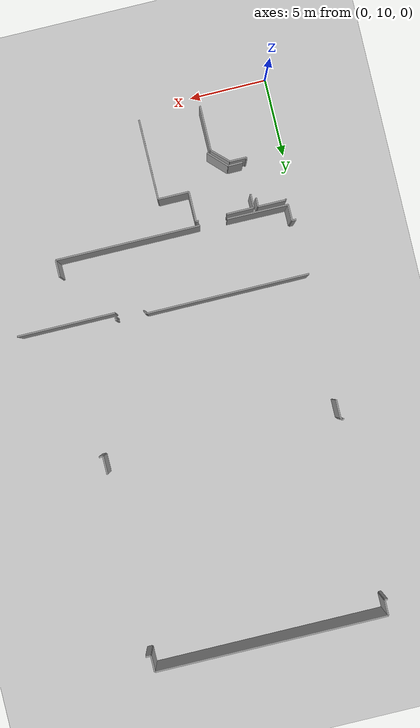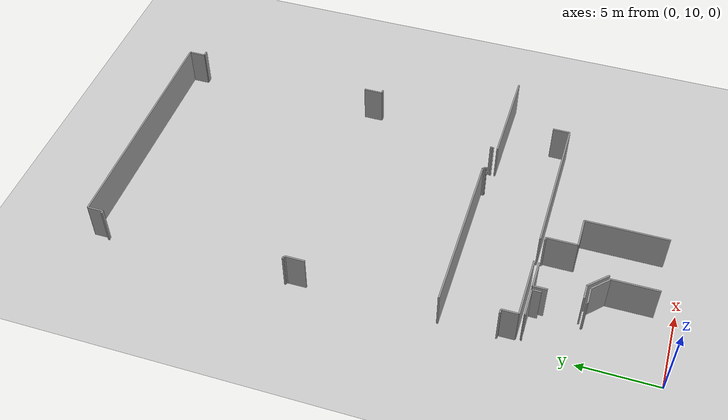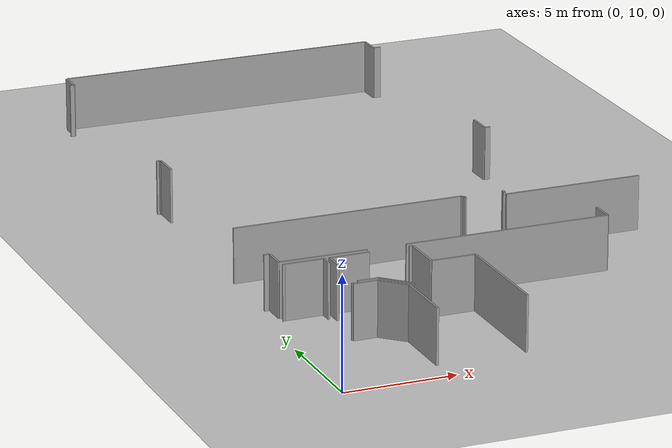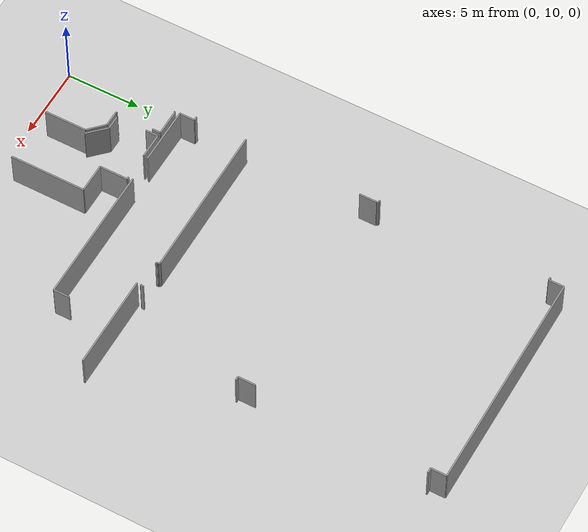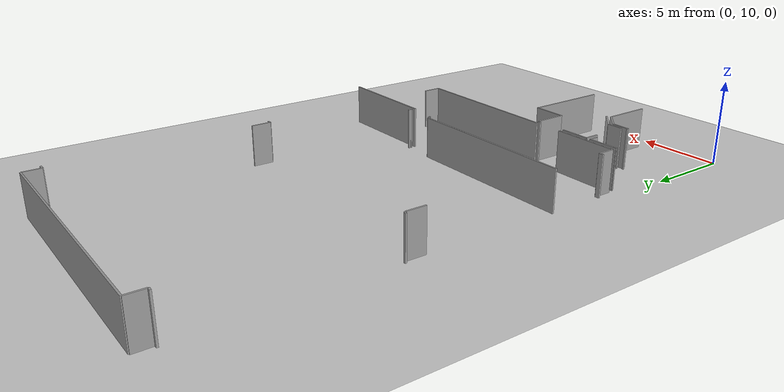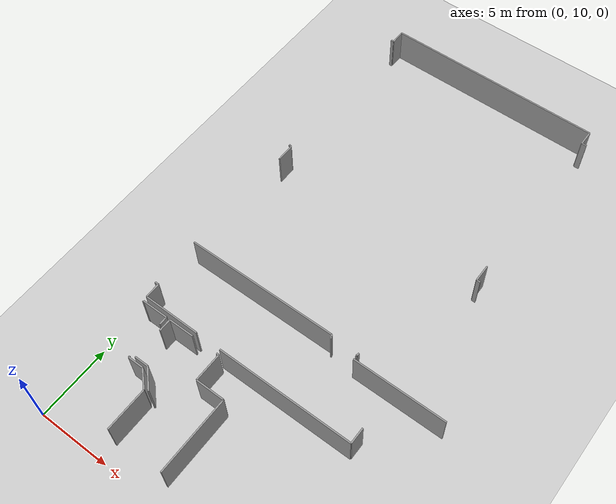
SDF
<sdf version="1.6">
 <world name="default">
  <model name="ground_plane">
   <static>1</static>
   <link name="link">
    <collision name="collision">
     <geometry><plane><normal>0 0 1</normal><size>100 100</size></plane></geometry>
     <surface><friction><ode><mu>100</mu><mu2>50</mu2></ode></friction></surface>
    </collision>
    <visual name="visual">
     <cast_shadows>0</cast_shadows>
     <geometry><plane><normal>0 0 1</normal><size>100 100</size></plane></geometry>
     <material>
      <script><uri>file://media/materials/scripts/gazebo.material</uri><name>Gazebo/Grey</name></script>
     </material>
    </visual>
   </link>
  </model>
  <model name="0510035737_A_40_1_105">
   <static>1</static>
   <link name="Wall_145">
    <collision name="Wall_145_Collision">
     <geometry><box><size>0.0688888182771 0.1 2.5</size></box></geometry>
     <pose>0.0344444091386 0 1.25 0 0 0</pose>
    </collision>
    <visual name="Wall_145_Visual">
     <pose>0.0344444091386 0 1.25 0 0 0</pose>
     <geometry><box><size>0.0688888182771 0.1 2.5</size></box></geometry>
     <material>
      <script><uri>file://media/materials/scripts/gazebo.material</uri><name>Gazebo/Grey</name></script>
      <ambient>1 1 1 1</ambient>
     </material>
    </visual>
    <pose>80.9819834133 -27.7230466143 0 0 0 1.57079632679</pose>
   </link>
   <link name="Wall_146">
    <collision name="Wall_146_Collision">
     <geometry><box><size>1.80331098472 0.1 2.5</size></box></geometry>
     <pose>0.901655492358 0 1.25 0 0 0</pose>
    </collision>
    <visual name="Wall_146_Visual">
     <pose>0.901655492358 0 1.25 0 0 0</pose>
     <geometry><box><size>1.80331098472 0.1 2.5</size></box></geometry>
     <material>
      <script><uri>file://media/materials/scripts/gazebo.material</uri><name>Gazebo/Grey</name></script>
      <ambient>1 1 1 1</ambient>
     </material>
    </visual>
    <pose>80.9819834133 -27.6541577961 0 0 0 0.0</pose>
   </link>
   <link name="Wall_147">
    <collision name="Wall_147_Collision">
     <geometry><box><size>0.571700931016 0.1 2.5</size></box></geometry>
     <pose>0.285850465508 0 1.25 0 0 0</pose>
    </collision>
    <visual name="Wall_147_Visual">
     <pose>0.285850465508 0 1.25 0 0 0</pose>
     <geometry><box><size>0.571700931016 0.1 2.5</size></box></geometry>
     <material>
      <script><uri>file://media/materials/scripts/gazebo.material</uri><name>Gazebo/Grey</name></script>
      <ambient>1 1 1 1</ambient>
     </material>
    </visual>
    <pose>82.785294398 -27.6541577961 0 0 0 -1.57079632679</pose>
   </link>
   <link name="Wall_148">
    <collision name="Wall_148_Collision">
     <geometry><box><size>0.0943090464237 0.1 2.5</size></box></geometry>
     <pose>0.0471545232118 0 1.25 0 0 0</pose>
    </collision>
    <visual name="Wall_148_Visual">
     <pose>0.0471545232118 0 1.25 0 0 0</pose>
     <geometry><box><size>0.0943090464237 0.1 2.5</size></box></geometry>
     <material>
      <script><uri>file://media/materials/scripts/gazebo.material</uri><name>Gazebo/Grey</name></script>
      <ambient>1 1 1 1</ambient>
     </material>
    </visual>
    <pose>82.785294398 -30.745511741 0 0 0 -1.57079632679</pose>
   </link>
   <link name="Wall_149">
    <collision name="Wall_149_Collision">
     <geometry><box><size>1.06815798672 0.1 2.5</size></box></geometry>
     <pose>0.534078993359 0 1.25 0 0 0</pose>
    </collision>
    <visual name="Wall_149_Visual">
     <pose>0.534078993359 0 1.25 0 0 0</pose>
     <geometry><box><size>1.06815798672 0.1 2.5</size></box></geometry>
     <material>
      <script><uri>file://media/materials/scripts/gazebo.material</uri><name>Gazebo/Grey</name></script>
      <ambient>1 1 1 1</ambient>
     </material>
    </visual>
    <pose>82.785294398 -30.8398207874 0 0 0 0.0</pose>
   </link>
   <link name="Wall_150">
    <collision name="Wall_150_Collision">
     <geometry><box><size>1.39245023457 0.1 2.5</size></box></geometry>
     <pose>0.696225117286 0 1.25 0 0 0</pose>
    </collision>
    <visual name="Wall_150_Visual">
     <pose>0.696225117286 0 1.25 0 0 0</pose>
     <geometry><box><size>1.39245023457 0.1 2.5</size></box></geometry>
     <material>
      <script><uri>file://media/materials/scripts/gazebo.material</uri><name>Gazebo/Grey</name></script>
      <ambient>1 1 1 1</ambient>
     </material>
    </visual>
    <pose>83.8534523847 -30.8398207874 0 0 0 -0.764613551993</pose>
   </link>
   <link name="Wall_151">
    <collision name="Wall_151_Collision">
     <geometry><box><size>2.87579041022 0.1 2.5</size></box></geometry>
     <pose>1.43789520511 0 1.25 0 0 0</pose>
    </collision>
    <visual name="Wall_151_Visual">
     <pose>1.43789520511 0 1.25 0 0 0</pose>
     <geometry><box><size>2.87579041022 0.1 2.5</size></box></geometry>
     <material>
      <script><uri>file://media/materials/scripts/gazebo.material</uri><name>Gazebo/Grey</name></script>
      <ambient>1 1 1 1</ambient>
     </material>
    </visual>
    <pose>84.8583140034 -31.8037558387 0 0 0 -1.57079632679</pose>
   </link>
   <link name="Wall_194">
    <collision name="Wall_194_Collision">
     <geometry><box><size>1.56112691031 0.1 2.5</size></box></geometry>
     <pose>0.780563455155 0 1.25 0 0 0</pose>
    </collision>
    <visual name="Wall_194_Visual">
     <pose>0.780563455155 0 1.25 0 0 0</pose>
     <geometry><box><size>1.56112691031 0.1 2.5</size></box></geometry>
     <material>
      <script><uri>file://media/materials/scripts/gazebo.material</uri><name>Gazebo/Grey</name></script>
      <ambient>1 1 1 1</ambient>
     </material>
    </visual>
    <pose>85.1120078803 -31.7056337581 0 0 0 2.3519342972</pose>
   </link>
   <link name="Wall_195">
    <collision name="Wall_195_Collision">
     <geometry><box><size>0.948428712148 0.1 2.5</size></box></geometry>
     <pose>0.474214356074 0 1.25 0 0 0</pose>
    </collision>
    <visual name="Wall_195_Visual">
     <pose>0.474214356074 0 1.25 0 0 0</pose>
     <geometry><box><size>0.948428712148 0.1 2.5</size></box></geometry>
     <material>
      <script><uri>file://media/materials/scripts/gazebo.material</uri><name>Gazebo/Grey</name></script>
      <ambient>1 1 1 1</ambient>
     </material>
    </visual>
    <pose>84.0128372152 -30.5970576086 0 0 0 3.14159265359</pose>
   </link>
   <link name="Wall_196">
    <collision name="Wall_196_Collision">
     <geometry><box><size>0.867083982079 0.1 2.5</size></box></geometry>
     <pose>0.433541991039 0 1.25 0 0 0</pose>
    </collision>
    <visual name="Wall_196_Visual">
     <pose>0.433541991039 0 1.25 0 0 0</pose>
     <geometry><box><size>0.867083982079 0.1 2.5</size></box></geometry>
     <material>
      <script><uri>file://media/materials/scripts/gazebo.material</uri><name>Gazebo/Grey</name></script>
      <ambient>1 1 1 1</ambient>
     </material>
    </visual>
    <pose>83.0644085031 -28.5230211941 0 0 0 1.57079632679</pose>
   </link>
   <link name="Wall_197">
    <collision name="Wall_197_Collision">
     <geometry><box><size>1.75780877633 0.1 2.5</size></box></geometry>
     <pose>0.878904388167 0 1.25 0 0 0</pose>
    </collision>
    <visual name="Wall_197_Visual">
     <pose>0.878904388167 0 1.25 0 0 0</pose>
     <geometry><box><size>1.75780877633 0.1 2.5</size></box></geometry>
     <material>
      <script><uri>file://media/materials/scripts/gazebo.material</uri><name>Gazebo/Grey</name></script>
      <ambient>1 1 1 1</ambient>
     </material>
    </visual>
    <pose>83.0644085031 -27.655937212 0 0 0 0.0</pose>
   </link>
   <link name="Wall_198">
    <collision name="Wall_198_Collision">
     <geometry><box><size>0.174382765085 0.1 2.5</size></box></geometry>
     <pose>0.0871913825427 0 1.25 0 0 0</pose>
    </collision>
    <visual name="Wall_198_Visual">
     <pose>0.0871913825427 0 1.25 0 0 0</pose>
     <geometry><box><size>0.174382765085 0.1 2.5</size></box></geometry>
     <material>
      <script><uri>file://media/materials/scripts/gazebo.material</uri><name>Gazebo/Grey</name></script>
      <ambient>1 1 1 1</ambient>
     </material>
    </visual>
    <pose>86.6349337485 -27.655937212 0 0 0 0.0</pose>
   </link>
   <link name="Wall_199">
    <collision name="Wall_199_Collision">
     <geometry><box><size>1.92507387754 0.1 2.5</size></box></geometry>
     <pose>0.962536938769 0 1.25 0 0 0</pose>
    </collision>
    <visual name="Wall_199_Visual">
     <pose>0.962536938769 0 1.25 0 0 0</pose>
     <geometry><box><size>1.92507387754 0.1 2.5</size></box></geometry>
     <material>
      <script><uri>file://media/materials/scripts/gazebo.material</uri><name>Gazebo/Grey</name></script>
      <ambient>1 1 1 1</ambient>
     </material>
    </visual>
    <pose>86.8093165136 -27.655937212 0 0 0 -1.57079632679</pose>
   </link>
   <link name="Wall_200">
    <collision name="Wall_200_Collision">
     <geometry><box><size>1.99294588669 0.1 2.5</size></box></geometry>
     <pose>0.996472943345 0 1.25 0 0 0</pose>
    </collision>
    <visual name="Wall_200_Visual">
     <pose>0.996472943345 0 1.25 0 0 0</pose>
     <geometry><box><size>1.99294588669 0.1 2.5</size></box></geometry>
     <material>
      <script><uri>file://media/materials/scripts/gazebo.material</uri><name>Gazebo/Grey</name></script>
      <ambient>1 1 1 1</ambient>
     </material>
    </visual>
    <pose>86.8093165136 -29.5810110896 0 0 0 0.0</pose>
   </link>
   <link name="Wall_201">
    <collision name="Wall_201_Collision">
     <geometry><box><size>5.14505417686 0.1 2.5</size></box></geometry>
     <pose>2.57252708843 0 1.25 0 0 0</pose>
    </collision>
    <visual name="Wall_201_Visual">
     <pose>2.57252708843 0 1.25 0 0 0</pose>
     <geometry><box><size>5.14505417686 0.1 2.5</size></box></geometry>
     <material>
      <script><uri>file://media/materials/scripts/gazebo.material</uri><name>Gazebo/Grey</name></script>
      <ambient>1 1 1 1</ambient>
     </material>
    </visual>
    <pose>88.8022624003 -29.5810110896 0 0 0 -1.57079632679</pose>
   </link>
   <link name="Wall_333">
    <collision name="Wall_333_Collision">
     <geometry><box><size>1.18407422707 0.1 2.5</size></box></geometry>
     <pose>0.592037113533 0 1.25 0 0 0</pose>
    </collision>
    <visual name="Wall_333_Visual">
     <pose>0.592037113533 0 1.25 0 0 0</pose>
     <geometry><box><size>1.18407422707 0.1 2.5</size></box></geometry>
     <material>
      <script><uri>file://media/materials/scripts/gazebo.material</uri><name>Gazebo/Grey</name></script>
      <ambient>1 1 1 1</ambient>
     </material>
    </visual>
    <pose>80.8693718026 -14.6778939341 0 0 0 1.57079632679</pose>
   </link>
   <link name="Wall_334">
    <collision name="Wall_334_Collision">
     <geometry><box><size>0.130948722163 0.1 2.5</size></box></geometry>
     <pose>0.0654743610814 0 1.25 0 0 0</pose>
    </collision>
    <visual name="Wall_334_Visual">
     <pose>0.0654743610814 0 1.25 0 0 0</pose>
     <geometry><box><size>0.130948722163 0.1 2.5</size></box></geometry>
     <material>
      <script><uri>file://media/materials/scripts/gazebo.material</uri><name>Gazebo/Grey</name></script>
      <ambient>1 1 1 1</ambient>
     </material>
    </visual>
    <pose>80.8693718026 -13.493819707 0 0 0 2.17818260894</pose>
   </link>
   <link name="Wall_335">
    <collision name="Wall_335_Collision">
     <geometry><box><size>0.132185186362 0.1 2.5</size></box></geometry>
     <pose>0.066092593181 0 1.25 0 0 0</pose>
    </collision>
    <visual name="Wall_335_Visual">
     <pose>0.066092593181 0 1.25 0 0 0</pose>
     <geometry><box><size>0.132185186362 0.1 2.5</size></box></geometry>
     <material>
      <script><uri>file://media/materials/scripts/gazebo.material</uri><name>Gazebo/Grey</name></script>
      <ambient>1 1 1 1</ambient>
     </material>
    </visual>
    <pose>80.7946363319 -13.386292142 0 0 0 3.14159265359</pose>
   </link>
   <link name="Wall_337">
    <collision name="Wall_337_Collision">
     <geometry><box><size>0.198023577262 0.1 2.5</size></box></geometry>
     <pose>0.0990117886308 0 1.25 0 0 0</pose>
    </collision>
    <visual name="Wall_337_Visual">
     <pose>0.0990117886308 0 1.25 0 0 0</pose>
     <geometry><box><size>0.198023577262 0.1 2.5</size></box></geometry>
     <material>
      <script><uri>file://media/materials/scripts/gazebo.material</uri><name>Gazebo/Grey</name></script>
      <ambient>1 1 1 1</ambient>
     </material>
    </visual>
    <pose>80.6624511455 -1.73874360522 0 0 0 0.0</pose>
   </link>
   <link name="Wall_338">
    <collision name="Wall_338_Collision">
     <geometry><box><size>1.0163007213 0.1 2.5</size></box></geometry>
     <pose>0.508150360649 0 1.25 0 0 0</pose>
    </collision>
    <visual name="Wall_338_Visual">
     <pose>0.508150360649 0 1.25 0 0 0</pose>
     <geometry><box><size>1.0163007213 0.1 2.5</size></box></geometry>
     <material>
      <script><uri>file://media/materials/scripts/gazebo.material</uri><name>Gazebo/Grey</name></script>
      <ambient>1 1 1 1</ambient>
     </material>
    </visual>
    <pose>80.8604747228 -1.73874360522 0 0 0 1.57079632679</pose>
   </link>
   <link name="Wall_339">
    <collision name="Wall_339_Collision">
     <geometry><box><size>15.101394935 0.1 2.5</size></box></geometry>
     <pose>7.55069746751 0 1.25 0 0 0</pose>
    </collision>
    <visual name="Wall_339_Visual">
     <pose>7.55069746751 0 1.25 0 0 0</pose>
     <geometry><box><size>15.101394935 0.1 2.5</size></box></geometry>
     <material>
      <script><uri>file://media/materials/scripts/gazebo.material</uri><name>Gazebo/Grey</name></script>
      <ambient>1 1 1 1</ambient>
     </material>
    </visual>
    <pose>80.8604747228 -0.722442883925 0 0 0 0.0</pose>
   </link>
   <link name="Wall_340">
    <collision name="Wall_340_Collision">
     <geometry><box><size>1.05621047949 0.1 2.5</size></box></geometry>
     <pose>0.528105239745 0 1.25 0 0 0</pose>
    </collision>
    <visual name="Wall_340_Visual">
     <pose>0.528105239745 0 1.25 0 0 0</pose>
     <geometry><box><size>1.05621047949 0.1 2.5</size></box></geometry>
     <material>
      <script><uri>file://media/materials/scripts/gazebo.material</uri><name>Gazebo/Grey</name></script>
      <ambient>1 1 1 1</ambient>
     </material>
    </visual>
    <pose>95.9618696578 -0.722442883925 0 0 0 -1.57079632679</pose>
   </link>
   <link name="Wall_341">
    <collision name="Wall_341_Collision">
     <geometry><box><size>0.345460900512 0.1 2.5</size></box></geometry>
     <pose>0.172730450256 0 1.25 0 0 0</pose>
    </collision>
    <visual name="Wall_341_Visual">
     <pose>0.172730450256 0 1.25 0 0 0</pose>
     <geometry><box><size>0.345460900512 0.1 2.5</size></box></geometry>
     <material>
      <script><uri>file://media/materials/scripts/gazebo.material</uri><name>Gazebo/Grey</name></script>
      <ambient>1 1 1 1</ambient>
     </material>
    </visual>
    <pose>95.9618696578 -1.77865336341 0 0 0 0.0</pose>
   </link>
   <link name="Wall_347">
    <collision name="Wall_347_Collision">
     <geometry><box><size>1.18814146357 0.1 2.5</size></box></geometry>
     <pose>0.594070731785 0 1.25 0 0 0</pose>
    </collision>
    <visual name="Wall_347_Visual">
     <pose>0.594070731785 0 1.25 0 0 0</pose>
     <geometry><box><size>1.18814146357 0.1 2.5</size></box></geometry>
     <material>
      <script><uri>file://media/materials/scripts/gazebo.material</uri><name>Gazebo/Grey</name></script>
      <ambient>1 1 1 1</ambient>
     </material>
    </visual>
    <pose>95.9588192304 -13.4717041085 0 0 0 -1.57079632679</pose>
   </link>
   <link name="Wall_348">
    <collision name="Wall_348_Collision">
     <geometry><box><size>0.257761113406 0.1 2.5</size></box></geometry>
     <pose>0.128880556703 0 1.25 0 0 0</pose>
    </collision>
    <visual name="Wall_348_Visual">
     <pose>0.128880556703 0 1.25 0 0 0</pose>
     <geometry><box><size>0.257761113406 0.1 2.5</size></box></geometry>
     <material>
      <script><uri>file://media/materials/scripts/gazebo.material</uri><name>Gazebo/Grey</name></script>
      <ambient>1 1 1 1</ambient>
     </material>
    </visual>
    <pose>95.9588192304 -14.6598455721 0 0 0 0.0</pose>
   </link>
   <link name="Wall_351">
    <collision name="Wall_351_Collision">
     <geometry><box><size>0.191160115662 0.1 2.5</size></box></geometry>
     <pose>0.095580057831 0 1.25 0 0 0</pose>
    </collision>
    <visual name="Wall_351_Visual">
     <pose>0.095580057831 0 1.25 0 0 0</pose>
     <geometry><box><size>0.191160115662 0.1 2.5</size></box></geometry>
     <material>
      <script><uri>file://media/materials/scripts/gazebo.material</uri><name>Gazebo/Grey</name></script>
      <ambient>1 1 1 1</ambient>
     </material>
    </visual>
    <pose>93.1501382225 -22.7704235646 0 0 0 -1.57079632679</pose>
   </link>
   <link name="Wall_352">
    <collision name="Wall_352_Collision">
     <geometry><box><size>0.0747354707509 0.1 2.5</size></box></geometry>
     <pose>0.0373677353754 0 1.25 0 0 0</pose>
    </collision>
    <visual name="Wall_352_Visual">
     <pose>0.0373677353754 0 1.25 0 0 0</pose>
     <geometry><box><size>0.0747354707509 0.1 2.5</size></box></geometry>
     <material>
      <script><uri>file://media/materials/scripts/gazebo.material</uri><name>Gazebo/Grey</name></script>
      <ambient>1 1 1 1</ambient>
     </material>
    </visual>
    <pose>93.1501382225 -22.9615836802 0 0 0 3.14159265359</pose>
   </link>
   <link name="Wall_353">
    <collision name="Wall_353_Collision">
     <geometry><box><size>0.0742270661879 0.1 2.5</size></box></geometry>
     <pose>0.037113533094 0 1.25 0 0 0</pose>
    </collision>
    <visual name="Wall_353_Visual">
     <pose>0.037113533094 0 1.25 0 0 0</pose>
     <geometry><box><size>0.0742270661879 0.1 2.5</size></box></geometry>
     <material>
      <script><uri>file://media/materials/scripts/gazebo.material</uri><name>Gazebo/Grey</name></script>
      <ambient>1 1 1 1</ambient>
     </material>
    </visual>
    <pose>91.3465730355 -22.9615836802 0 0 0 3.14159265359</pose>
   </link>
   <link name="Wall_354">
    <collision name="Wall_354_Collision">
     <geometry><box><size>0.109815385593 0.1 2.5</size></box></geometry>
     <pose>0.0549076927965 0 1.25 0 0 0</pose>
    </collision>
    <visual name="Wall_354_Visual">
     <pose>0.0549076927965 0 1.25 0 0 0</pose>
     <geometry><box><size>0.109815385593 0.1 2.5</size></box></geometry>
     <material>
      <script><uri>file://media/materials/scripts/gazebo.material</uri><name>Gazebo/Grey</name></script>
      <ambient>1 1 1 1</ambient>
     </material>
    </visual>
    <pose>91.2723459693 -22.9615836802 0 0 0 1.57079632679</pose>
   </link>
   <link name="Wall_355">
    <collision name="Wall_355_Collision">
     <geometry><box><size>0.140508572123 0.1 2.5</size></box></geometry>
     <pose>0.0702542860617 0 1.25 0 0 0</pose>
    </collision>
    <visual name="Wall_355_Visual">
     <pose>0.0702542860617 0 1.25 0 0 0</pose>
     <geometry><box><size>0.140508572123 0.1 2.5</size></box></geometry>
     <material>
      <script><uri>file://media/materials/scripts/gazebo.material</uri><name>Gazebo/Grey</name></script>
      <ambient>1 1 1 1</ambient>
     </material>
    </visual>
    <pose>91.2723459693 -22.8517682946 0 0 0 2.39842289231</pose>
   </link>
   <link name="Wall_356">
    <collision name="Wall_356_Collision">
     <geometry><box><size>10.515111249 0.1 2.5</size></box></geometry>
     <pose>5.2575556245 0 1.25 0 0 0</pose>
    </collision>
    <visual name="Wall_356_Visual">
     <pose>5.2575556245 0 1.25 0 0 0</pose>
     <geometry><box><size>10.515111249 0.1 2.5</size></box></geometry>
     <material>
      <script><uri>file://media/materials/scripts/gazebo.material</uri><name>Gazebo/Grey</name></script>
      <ambient>1 1 1 1</ambient>
     </material>
    </visual>
    <pose>91.1688856407 -22.7566966414 0 0 0 -3.13905428119</pose>
   </link>
   <link name="Wall_378">
    <collision name="Wall_378_Collision">
     <geometry><box><size>1.03307807188 0.1 2.5</size></box></geometry>
     <pose>0.516539035938 0 1.25 0 0 0</pose>
    </collision>
    <visual name="Wall_378_Visual">
     <pose>0.516539035938 0 1.25 0 0 0</pose>
     <geometry><box><size>1.03307807188 0.1 2.5</size></box></geometry>
     <material>
      <script><uri>file://media/materials/scripts/gazebo.material</uri><name>Gazebo/Grey</name></script>
      <ambient>1 1 1 1</ambient>
     </material>
    </visual>
    <pose>80.9176702361 -27.3331003146 0 0 0 1.57079632679</pose>
   </link>
   <link name="Wall_379">
    <collision name="Wall_379_Collision">
     <geometry><box><size>0.263861968161 0.1 2.5</size></box></geometry>
     <pose>0.131930984081 0 1.25 0 0 0</pose>
    </collision>
    <visual name="Wall_379_Visual">
     <pose>0.131930984081 0 1.25 0 0 0</pose>
     <geometry><box><size>0.263861968161 0.1 2.5</size></box></geometry>
     <material>
      <script><uri>file://media/materials/scripts/gazebo.material</uri><name>Gazebo/Grey</name></script>
      <ambient>1 1 1 1</ambient>
     </material>
    </visual>
    <pose>80.9176702361 -26.3000222427 0 0 0 3.14159265359</pose>
   </link>
   <link name="Wall_383">
    <collision name="Wall_383_Collision">
     <geometry><box><size>6.33751707922 0.1 2.5</size></box></geometry>
     <pose>3.16875853961 0 1.25 0 0 0</pose>
    </collision>
    <visual name="Wall_383_Visual">
     <pose>3.16875853961 0 1.25 0 0 0</pose>
     <geometry><box><size>6.33751707922 0.1 2.5</size></box></geometry>
     <material>
      <script><uri>file://media/materials/scripts/gazebo.material</uri><name>Gazebo/Grey</name></script>
      <ambient>1 1 1 1</ambient>
     </material>
    </visual>
    <pose>93.1089574529 -23.2480696514 0 0 0 0.0</pose>
   </link>
   <link name="Wall_397">
    <collision name="Wall_397_Collision">
     <geometry><box><size>1.07985129167 0.1 2.5</size></box></geometry>
     <pose>0.539925645833 0 1.25 0 0 0</pose>
    </collision>
    <visual name="Wall_397_Visual">
     <pose>0.539925645833 0 1.25 0 0 0</pose>
     <geometry><box><size>1.07985129167 0.1 2.5</size></box></geometry>
     <material>
      <script><uri>file://media/materials/scripts/gazebo.material</uri><name>Gazebo/Grey</name></script>
      <ambient>1 1 1 1</ambient>
     </material>
    </visual>
    <pose>95.9679705125 -26.2776524419 0 0 0 -1.57079632679</pose>
   </link>
   <link name="Wall_398">
    <collision name="Wall_398_Collision">
     <geometry><box><size>9.34854310317 0.1 2.5</size></box></geometry>
     <pose>4.67427155159 0 1.25 0 0 0</pose>
    </collision>
    <visual name="Wall_398_Visual">
     <pose>4.67427155159 0 1.25 0 0 0</pose>
     <geometry><box><size>9.34854310317 0.1 2.5</size></box></geometry>
     <material>
      <script><uri>file://media/materials/scripts/gazebo.material</uri><name>Gazebo/Grey</name></script>
      <ambient>1 1 1 1</ambient>
     </material>
    </visual>
    <pose>95.9679705125 -27.3575037336 0 0 0 3.14159265359</pose>
   </link>
   <link name="Wall_399">
    <collision name="Wall_399_Collision">
     <geometry><box><size>3.94402389503 0.1 2.5</size></box></geometry>
     <pose>1.97201194751 0 1.25 0 0 0</pose>
    </collision>
    <visual name="Wall_399_Visual">
     <pose>1.97201194751 0 1.25 0 0 0</pose>
     <geometry><box><size>3.94402389503 0.1 2.5</size></box></geometry>
     <material>
      <script><uri>file://media/materials/scripts/gazebo.material</uri><name>Gazebo/Grey</name></script>
      <ambient>1 1 1 1</ambient>
     </material>
    </visual>
    <pose>84.861618633 -27.3575037336 0 0 0 3.13540517213</pose>
   </link>
   <pose>-80.2 45.8857980363 0 0 0 0</pose>
  </model>
 </world>
</sdf>
